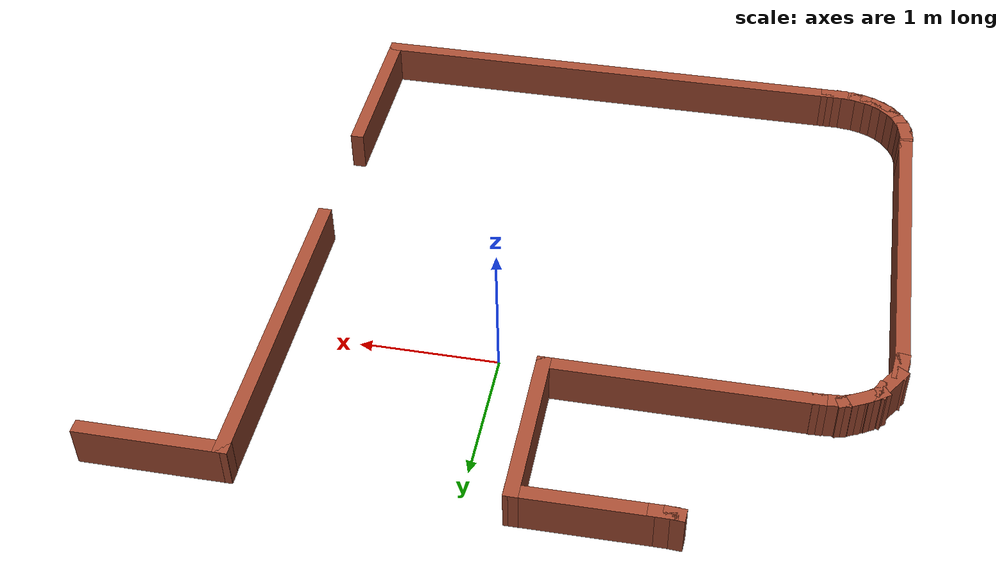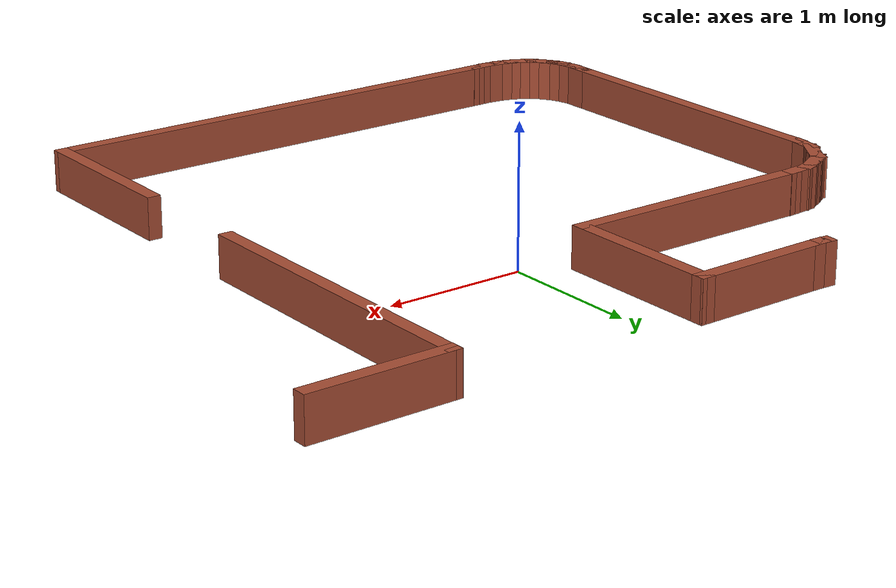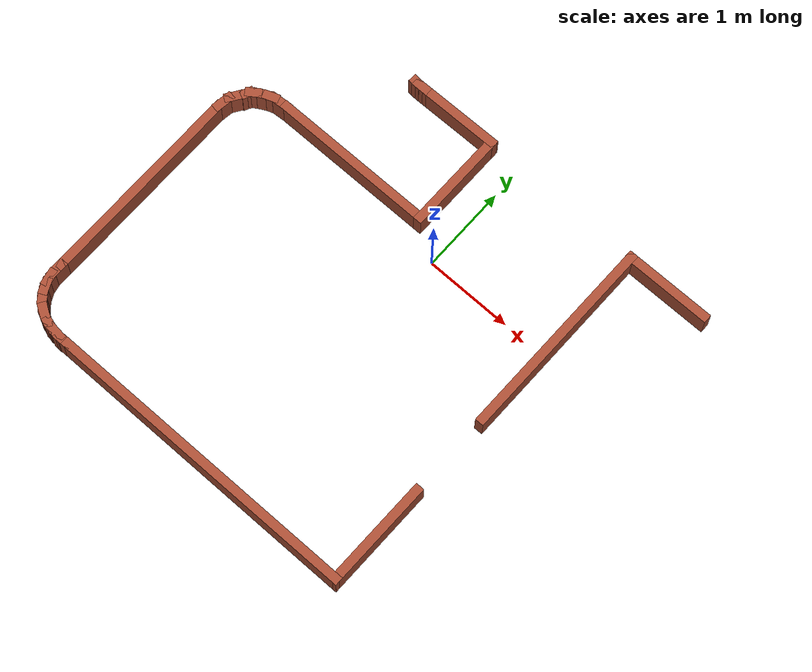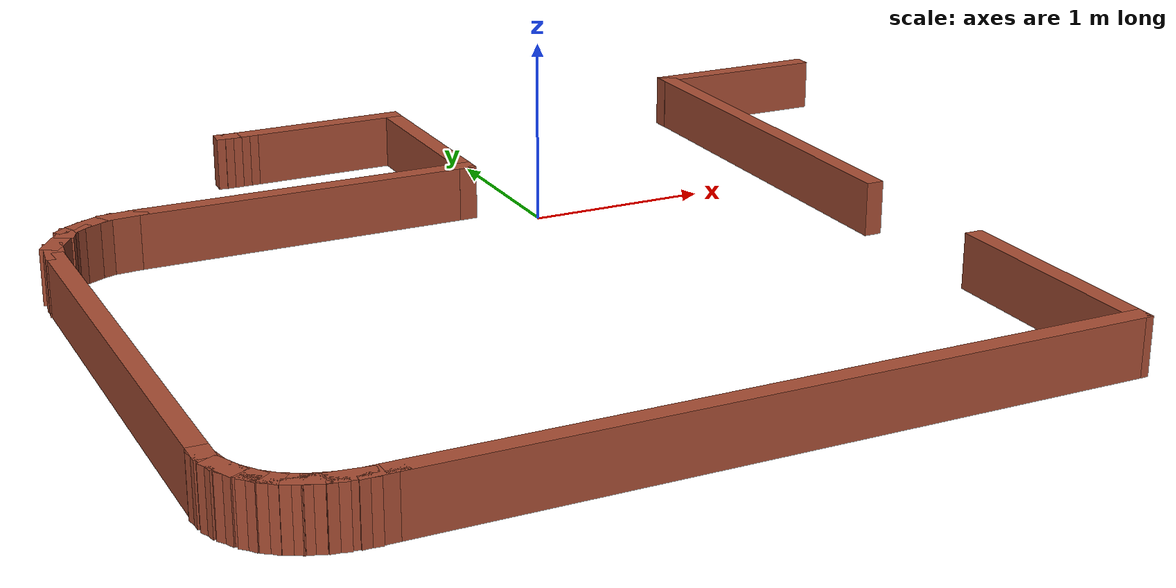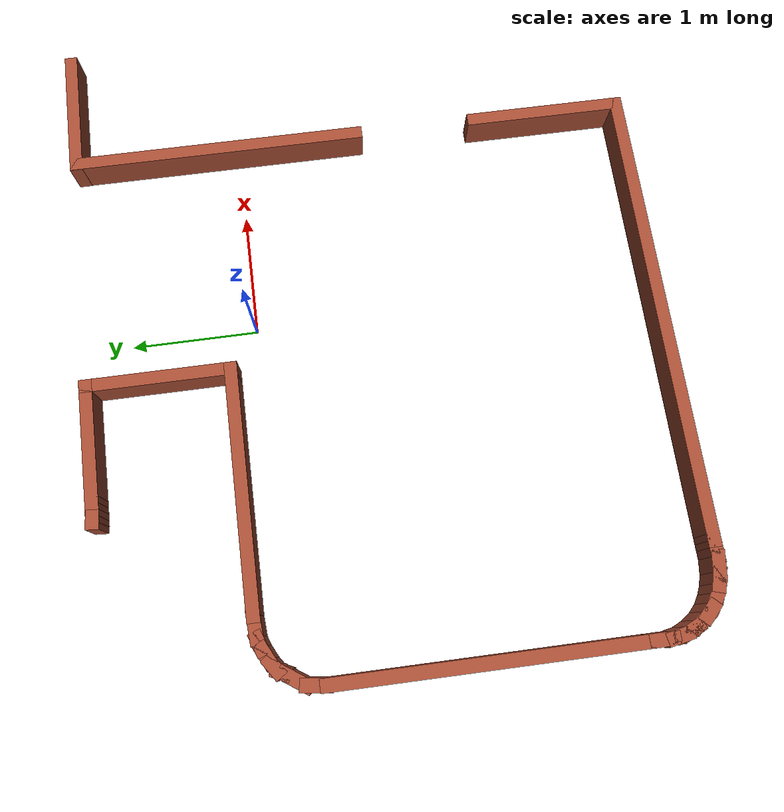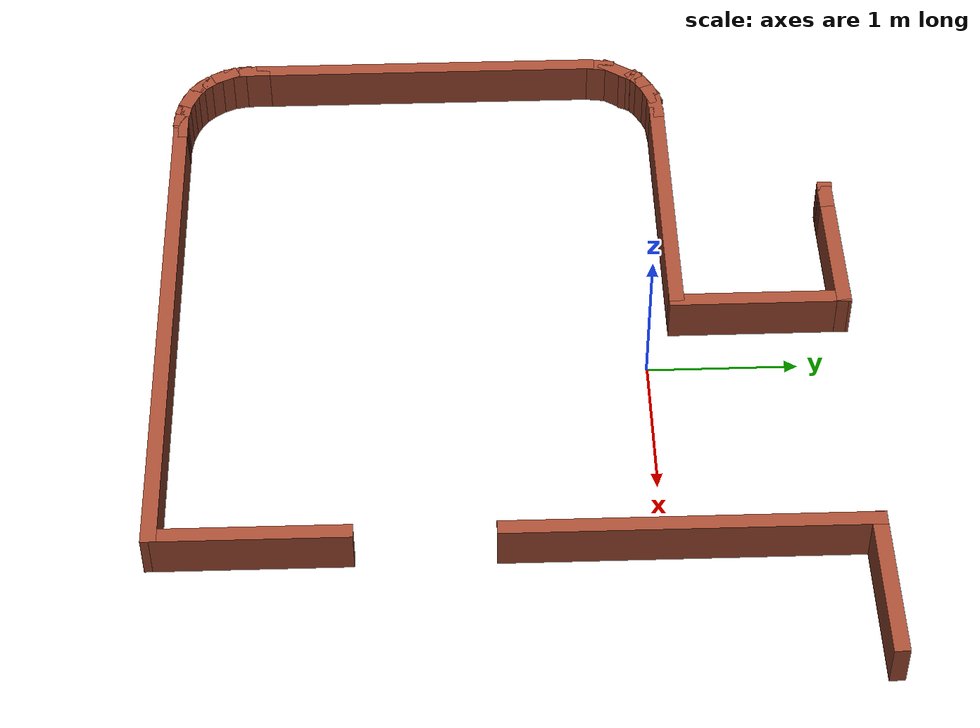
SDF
<sdf version="1.6">
 <model name="walls">
  <link name="Wall_47">
   <pose>-1.37458 1.31837 0 0 0 -0.065125</pose>
   <visual name="Wall_47_Visual">
    <pose>0 0 0.15 0 -0 0</pose>
    <geometry><box><size>0.146328 0.1 0.3</size></box></geometry>
    <material>
     <script><uri>file://media/materials/scripts/gazebo.material</uri><name>Gazebo/Bricks</name></script>
     <ambient>1 1 1 1</ambient>
    </material>
    <meta><layer>0</layer></meta>
   </visual>
   <collision name="Wall_47_Collision">
    <pose>0 0 0.15 0 -0 0</pose>
    <geometry><box><size>0.146328 0.1 0.3</size></box></geometry>
    <surface>
     <friction>
      <ode><mu>1</mu><mu2>1</mu2><fdir1>0 0 0</fdir1><slip1>0</slip1><slip2>0</slip2></ode>
      <torsional>
       <coefficient>1</coefficient>
       <patch_radius>0</patch_radius>
       <surface_radius>0</surface_radius>
       <use_patch_radius>1</use_patch_radius>
       <ode><slip>0</slip></ode>
      </torsional>
     </friction>
     <bounce><restitution_coefficient>0</restitution_coefficient><threshold>1e+06</threshold></bounce>
     <contact>
      <collide_without_contact>0</collide_without_contact>
      <collide_without_contact_bitmask>1</collide_without_contact_bitmask>
      <collide_bitmask>1</collide_bitmask>
      <ode>
       <soft_cfm>0</soft_cfm>
       <soft_erp>0.2</soft_erp>
       <kp>1e+13</kp>
       <kd>1</kd>
       <max_vel>0.01</max_vel>
       <min_depth>0</min_depth>
      </ode>
      <bullet>
       <split_impulse>1</split_impulse>
       <split_impulse_penetration_threshold>-0.01</split_impulse_penetration_threshold>
       <soft_cfm>0</soft_cfm>
       <soft_erp>0.2</soft_erp>
       <kp>1e+13</kp>
       <kd>1</kd>
      </bullet>
     </contact>
    </surface>
   </collision>
  </link>
  <link name="Wall_48">
   <pose>-1.30358 1.31687 0 0 -0 0</pose>
   <visual name="Wall_48_Visual">
    <pose>0 0 0.15 0 -0 0</pose>
    <geometry><box><size>0.19613 0.1 0.3</size></box></geometry>
    <material>
     <script><uri>file://media/materials/scripts/gazebo.material</uri><name>Gazebo/Bricks</name></script>
     <ambient>1 1 1 1</ambient>
    </material>
    <meta><layer>0</layer></meta>
   </visual>
   <collision name="Wall_48_Collision">
    <pose>0 0 0.15 0 -0 0</pose>
    <geometry><box><size>0.19613 0.1 0.3</size></box></geometry>
    <surface>
     <friction>
      <ode><mu>1</mu><mu2>1</mu2><fdir1>0 0 0</fdir1><slip1>0</slip1><slip2>0</slip2></ode>
      <torsional>
       <coefficient>1</coefficient>
       <patch_radius>0</patch_radius>
       <surface_radius>0</surface_radius>
       <use_patch_radius>1</use_patch_radius>
       <ode><slip>0</slip></ode>
      </torsional>
     </friction>
     <bounce><restitution_coefficient>0</restitution_coefficient><threshold>1e+06</threshold></bounce>
     <contact>
      <collide_without_contact>0</collide_without_contact>
      <collide_without_contact_bitmask>1</collide_without_contact_bitmask>
      <collide_bitmask>1</collide_bitmask>
      <ode>
       <soft_cfm>0</soft_cfm>
       <soft_erp>0.2</soft_erp>
       <kp>1e+13</kp>
       <kd>1</kd>
       <max_vel>0.01</max_vel>
       <min_depth>0</min_depth>
      </ode>
      <bullet>
       <split_impulse>1</split_impulse>
       <split_impulse_penetration_threshold>-0.01</split_impulse_penetration_threshold>
       <soft_cfm>0</soft_cfm>
       <soft_erp>0.2</soft_erp>
       <kp>1e+13</kp>
       <kd>1</kd>
      </bullet>
     </contact>
    </surface>
   </collision>
  </link>
  <link name="Wall_49">
   <pose>-0.805083 1.32087 0 0 -0 0.008879</pose>
   <visual name="Wall_49_Visual">
    <pose>0 0 0.15 0 -0 0</pose>
    <geometry><box><size>1.00152 0.1 0.3</size></box></geometry>
    <material>
     <script><uri>file://media/materials/scripts/gazebo.material</uri><name>Gazebo/Bricks</name></script>
     <ambient>1 1 1 1</ambient>
    </material>
    <meta><layer>0</layer></meta>
   </visual>
   <collision name="Wall_49_Collision">
    <pose>0 0 0.15 0 -0 0</pose>
    <geometry><box><size>1.00152 0.1 0.3</size></box></geometry>
    <surface>
     <friction>
      <ode><mu>1</mu><mu2>1</mu2><fdir1>0 0 0</fdir1><slip1>0</slip1><slip2>0</slip2></ode>
      <torsional>
       <coefficient>1</coefficient>
       <patch_radius>0</patch_radius>
       <surface_radius>0</surface_radius>
       <use_patch_radius>1</use_patch_radius>
       <ode><slip>0</slip></ode>
      </torsional>
     </friction>
     <bounce><restitution_coefficient>0</restitution_coefficient><threshold>1e+06</threshold></bounce>
     <contact>
      <collide_without_contact>0</collide_without_contact>
      <collide_without_contact_bitmask>1</collide_without_contact_bitmask>
      <collide_bitmask>1</collide_bitmask>
      <ode>
       <soft_cfm>0</soft_cfm>
       <soft_erp>0.2</soft_erp>
       <kp>1e+13</kp>
       <kd>1</kd>
       <max_vel>0.01</max_vel>
       <min_depth>0</min_depth>
      </ode>
      <bullet>
       <split_impulse>1</split_impulse>
       <split_impulse_penetration_threshold>-0.01</split_impulse_penetration_threshold>
       <soft_cfm>0</soft_cfm>
       <soft_erp>0.2</soft_erp>
       <kp>1e+13</kp>
       <kd>1</kd>
      </bullet>
     </contact>
    </surface>
   </collision>
  </link>
  <link name="Wall_50">
   <pose>-0.354083 0.768873 0 0 0 -1.5699</pose>
   <visual name="Wall_50_Visual">
    <pose>0 0 0.15 0 -0 0</pose>
    <geometry><box><size>1.21225 0.1 0.3</size></box></geometry>
    <material>
     <script><uri>file://media/materials/scripts/gazebo.material</uri><name>Gazebo/Bricks</name></script>
     <ambient>1 1 1 1</ambient>
    </material>
    <meta><layer>0</layer></meta>
   </visual>
   <collision name="Wall_50_Collision">
    <pose>0 0 0.15 0 -0 0</pose>
    <geometry><box><size>1.21225 0.1 0.3</size></box></geometry>
    <surface>
     <friction>
      <ode><mu>1</mu><mu2>1</mu2><fdir1>0 0 0</fdir1><slip1>0</slip1><slip2>0</slip2></ode>
      <torsional>
       <coefficient>1</coefficient>
       <patch_radius>0</patch_radius>
       <surface_radius>0</surface_radius>
       <use_patch_radius>1</use_patch_radius>
       <ode><slip>0</slip></ode>
      </torsional>
     </friction>
     <bounce><restitution_coefficient>0</restitution_coefficient><threshold>1e+06</threshold></bounce>
     <contact>
      <collide_without_contact>0</collide_without_contact>
      <collide_without_contact_bitmask>1</collide_without_contact_bitmask>
      <collide_bitmask>1</collide_bitmask>
      <ode>
       <soft_cfm>0</soft_cfm>
       <soft_erp>0.2</soft_erp>
       <kp>1e+13</kp>
       <kd>1</kd>
       <max_vel>0.01</max_vel>
       <min_depth>0</min_depth>
      </ode>
      <bullet>
       <split_impulse>1</split_impulse>
       <split_impulse_penetration_threshold>-0.01</split_impulse_penetration_threshold>
       <soft_cfm>0</soft_cfm>
       <soft_erp>0.2</soft_erp>
       <kp>1e+13</kp>
       <kd>1</kd>
      </bullet>
     </contact>
    </surface>
   </collision>
  </link>
  <link name="Wall_51">
   <pose>-1.27858 0.212873 0 0 -0 3.14159</pose>
   <visual name="Wall_51_Visual">
    <pose>0 0 0.15 0 -0 0</pose>
    <geometry><box><size>1.94962 0.1 0.3</size></box></geometry>
    <material>
     <script><uri>file://media/materials/scripts/gazebo.material</uri><name>Gazebo/Bricks</name></script>
     <ambient>1 1 1 1</ambient>
    </material>
    <meta><layer>0</layer></meta>
   </visual>
   <collision name="Wall_51_Collision">
    <pose>0 0 0.15 0 -0 0</pose>
    <geometry><box><size>1.94962 0.1 0.3</size></box></geometry>
    <surface>
     <friction>
      <ode><mu>1</mu><mu2>1</mu2><fdir1>0 0 0</fdir1><slip1>0</slip1><slip2>0</slip2></ode>
      <torsional>
       <coefficient>1</coefficient>
       <patch_radius>0</patch_radius>
       <surface_radius>0</surface_radius>
       <use_patch_radius>1</use_patch_radius>
       <ode><slip>0</slip></ode>
      </torsional>
     </friction>
     <bounce><restitution_coefficient>0</restitution_coefficient><threshold>1e+06</threshold></bounce>
     <contact>
      <collide_without_contact>0</collide_without_contact>
      <collide_without_contact_bitmask>1</collide_without_contact_bitmask>
      <collide_bitmask>1</collide_bitmask>
      <ode>
       <soft_cfm>0</soft_cfm>
       <soft_erp>0.2</soft_erp>
       <kp>1e+13</kp>
       <kd>1</kd>
       <max_vel>0.01</max_vel>
       <min_depth>0</min_depth>
      </ode>
      <bullet>
       <split_impulse>1</split_impulse>
       <split_impulse_penetration_threshold>-0.01</split_impulse_penetration_threshold>
       <soft_cfm>0</soft_cfm>
       <soft_erp>0.2</soft_erp>
       <kp>1e+13</kp>
       <kd>1</kd>
      </bullet>
     </contact>
    </surface>
   </collision>
  </link>
  <link name="Wall_52">
   <pose>-2.28158 0.207373 0 0 0 -3.0712</pose>
   <visual name="Wall_52_Visual">
    <pose>0 0 0.15 0 -0 0</pose>
    <geometry><box><size>0.256104 0.1 0.3</size></box></geometry>
    <material>
     <script><uri>file://media/materials/scripts/gazebo.material</uri><name>Gazebo/Bricks</name></script>
     <ambient>1 1 1 1</ambient>
    </material>
    <meta><layer>0</layer></meta>
   </visual>
   <collision name="Wall_52_Collision">
    <pose>0 0 0.15 0 -0 0</pose>
    <geometry><box><size>0.256104 0.1 0.3</size></box></geometry>
    <surface>
     <friction>
      <ode><mu>1</mu><mu2>1</mu2><fdir1>0 0 0</fdir1><slip1>0</slip1><slip2>0</slip2></ode>
      <torsional>
       <coefficient>1</coefficient>
       <patch_radius>0</patch_radius>
       <surface_radius>0</surface_radius>
       <use_patch_radius>1</use_patch_radius>
       <ode><slip>0</slip></ode>
      </torsional>
     </friction>
     <bounce><restitution_coefficient>0</restitution_coefficient><threshold>1e+06</threshold></bounce>
     <contact>
      <collide_without_contact>0</collide_without_contact>
      <collide_without_contact_bitmask>1</collide_without_contact_bitmask>
      <collide_bitmask>1</collide_bitmask>
      <ode>
       <soft_cfm>0</soft_cfm>
       <soft_erp>0.2</soft_erp>
       <kp>1e+13</kp>
       <kd>1</kd>
       <max_vel>0.01</max_vel>
       <min_depth>0</min_depth>
      </ode>
      <bullet>
       <split_impulse>1</split_impulse>
       <split_impulse_penetration_threshold>-0.01</split_impulse_penetration_threshold>
       <soft_cfm>0</soft_cfm>
       <soft_erp>0.2</soft_erp>
       <kp>1e+13</kp>
       <kd>1</kd>
      </bullet>
     </contact>
    </surface>
   </collision>
  </link>
  <link name="Wall_53">
   <pose>-2.39858 0.187373 0 0 0 -2.78564</pose>
   <visual name="Wall_53_Visual">
    <pose>0 0 0.15 0 -0 0</pose>
    <geometry><box><size>0.182791 0.1 0.3</size></box></geometry>
    <material>
     <script><uri>file://media/materials/scripts/gazebo.material</uri><name>Gazebo/Bricks</name></script>
     <ambient>1 1 1 1</ambient>
    </material>
    <meta><layer>0</layer></meta>
   </visual>
   <collision name="Wall_53_Collision">
    <pose>0 0 0.15 0 -0 0</pose>
    <geometry><box><size>0.182791 0.1 0.3</size></box></geometry>
    <surface>
     <friction>
      <ode><mu>1</mu><mu2>1</mu2><fdir1>0 0 0</fdir1><slip1>0</slip1><slip2>0</slip2></ode>
      <torsional>
       <coefficient>1</coefficient>
       <patch_radius>0</patch_radius>
       <surface_radius>0</surface_radius>
       <use_patch_radius>1</use_patch_radius>
       <ode><slip>0</slip></ode>
      </torsional>
     </friction>
     <bounce><restitution_coefficient>0</restitution_coefficient><threshold>1e+06</threshold></bounce>
     <contact>
      <collide_without_contact>0</collide_without_contact>
      <collide_without_contact_bitmask>1</collide_without_contact_bitmask>
      <collide_bitmask>1</collide_bitmask>
      <ode>
       <soft_cfm>0</soft_cfm>
       <soft_erp>0.2</soft_erp>
       <kp>1e+13</kp>
       <kd>1</kd>
       <max_vel>0.01</max_vel>
       <min_depth>0</min_depth>
      </ode>
      <bullet>
       <split_impulse>1</split_impulse>
       <split_impulse_penetration_threshold>-0.01</split_impulse_penetration_threshold>
       <soft_cfm>0</soft_cfm>
       <soft_erp>0.2</soft_erp>
       <kp>1e+13</kp>
       <kd>1</kd>
      </bullet>
     </contact>
    </surface>
   </collision>
  </link>
  <link name="Wall_54">
   <pose>-2.48458 0.148373 0 0 0 -2.66107</pose>
   <visual name="Wall_54_Visual">
    <pose>0 0 0.15 0 -0 0</pose>
    <geometry><box><size>0.205757 0.1 0.3</size></box></geometry>
    <material>
     <script><uri>file://media/materials/scripts/gazebo.material</uri><name>Gazebo/Bricks</name></script>
     <ambient>1 1 1 1</ambient>
    </material>
    <meta><layer>0</layer></meta>
   </visual>
   <collision name="Wall_54_Collision">
    <pose>0 0 0.15 0 -0 0</pose>
    <geometry><box><size>0.205757 0.1 0.3</size></box></geometry>
    <surface>
     <friction>
      <ode><mu>1</mu><mu2>1</mu2><fdir1>0 0 0</fdir1><slip1>0</slip1><slip2>0</slip2></ode>
      <torsional>
       <coefficient>1</coefficient>
       <patch_radius>0</patch_radius>
       <surface_radius>0</surface_radius>
       <use_patch_radius>1</use_patch_radius>
       <ode><slip>0</slip></ode>
      </torsional>
     </friction>
     <bounce><restitution_coefficient>0</restitution_coefficient><threshold>1e+06</threshold></bounce>
     <contact>
      <collide_without_contact>0</collide_without_contact>
      <collide_without_contact_bitmask>1</collide_without_contact_bitmask>
      <collide_bitmask>1</collide_bitmask>
      <ode>
       <soft_cfm>0</soft_cfm>
       <soft_erp>0.2</soft_erp>
       <kp>1e+13</kp>
       <kd>1</kd>
       <max_vel>0.01</max_vel>
       <min_depth>0</min_depth>
      </ode>
      <bullet>
       <split_impulse>1</split_impulse>
       <split_impulse_penetration_threshold>-0.01</split_impulse_penetration_threshold>
       <soft_cfm>0</soft_cfm>
       <soft_erp>0.2</soft_erp>
       <kp>1e+13</kp>
       <kd>1</kd>
      </bullet>
     </contact>
    </surface>
   </collision>
  </link>
  <link name="Wall_55">
   <pose>-2.56558 0.099873 0 0 0 -2.52693</pose>
   <visual name="Wall_55_Visual">
    <pose>0 0 0.15 0 -0 0</pose>
    <geometry><box><size>0.183298 0.1 0.3</size></box></geometry>
    <material>
     <script><uri>file://media/materials/scripts/gazebo.material</uri><name>Gazebo/Bricks</name></script>
     <ambient>1 1 1 1</ambient>
    </material>
    <meta><layer>0</layer></meta>
   </visual>
   <collision name="Wall_55_Collision">
    <pose>0 0 0.15 0 -0 0</pose>
    <geometry><box><size>0.183298 0.1 0.3</size></box></geometry>
    <surface>
     <friction>
      <ode><mu>1</mu><mu2>1</mu2><fdir1>0 0 0</fdir1><slip1>0</slip1><slip2>0</slip2></ode>
      <torsional>
       <coefficient>1</coefficient>
       <patch_radius>0</patch_radius>
       <surface_radius>0</surface_radius>
       <use_patch_radius>1</use_patch_radius>
       <ode><slip>0</slip></ode>
      </torsional>
     </friction>
     <bounce><restitution_coefficient>0</restitution_coefficient><threshold>1e+06</threshold></bounce>
     <contact>
      <collide_without_contact>0</collide_without_contact>
      <collide_without_contact_bitmask>1</collide_without_contact_bitmask>
      <collide_bitmask>1</collide_bitmask>
      <ode>
       <soft_cfm>0</soft_cfm>
       <soft_erp>0.2</soft_erp>
       <kp>1e+13</kp>
       <kd>1</kd>
       <max_vel>0.01</max_vel>
       <min_depth>0</min_depth>
      </ode>
      <bullet>
       <split_impulse>1</split_impulse>
       <split_impulse_penetration_threshold>-0.01</split_impulse_penetration_threshold>
       <soft_cfm>0</soft_cfm>
       <soft_erp>0.2</soft_erp>
       <kp>1e+13</kp>
       <kd>1</kd>
      </bullet>
     </contact>
    </surface>
   </collision>
  </link>
  <link name="Wall_56">
   <pose>-2.60933 0.053873 0 0 0 -1.98783</pose>
   <visual name="Wall_56_Visual">
    <pose>0 0 0.15 0 -0 0</pose>
    <geometry><box><size>0.149001 0.1 0.3</size></box></geometry>
    <material>
     <script><uri>file://media/materials/scripts/gazebo.material</uri><name>Gazebo/Bricks</name></script>
     <ambient>1 1 1 1</ambient>
    </material>
    <meta><layer>0</layer></meta>
   </visual>
   <collision name="Wall_56_Collision">
    <pose>0 0 0.15 0 -0 0</pose>
    <geometry><box><size>0.149001 0.1 0.3</size></box></geometry>
    <surface>
     <friction>
      <ode><mu>1</mu><mu2>1</mu2><fdir1>0 0 0</fdir1><slip1>0</slip1><slip2>0</slip2></ode>
      <torsional>
       <coefficient>1</coefficient>
       <patch_radius>0</patch_radius>
       <surface_radius>0</surface_radius>
       <use_patch_radius>1</use_patch_radius>
       <ode><slip>0</slip></ode>
      </torsional>
     </friction>
     <bounce><restitution_coefficient>0</restitution_coefficient><threshold>1e+06</threshold></bounce>
     <contact>
      <collide_without_contact>0</collide_without_contact>
      <collide_without_contact_bitmask>1</collide_without_contact_bitmask>
      <collide_bitmask>1</collide_bitmask>
      <ode>
       <soft_cfm>0</soft_cfm>
       <soft_erp>0.2</soft_erp>
       <kp>1e+13</kp>
       <kd>1</kd>
       <max_vel>0.01</max_vel>
       <min_depth>0</min_depth>
      </ode>
      <bullet>
       <split_impulse>1</split_impulse>
       <split_impulse_penetration_threshold>-0.01</split_impulse_penetration_threshold>
       <soft_cfm>0</soft_cfm>
       <soft_erp>0.2</soft_erp>
       <kp>1e+13</kp>
       <kd>1</kd>
      </bullet>
     </contact>
    </surface>
   </collision>
  </link>
  <link name="Wall_57">
   <pose>-2.67015 -0.041127 0 0 0 -2.16195</pose>
   <visual name="Wall_57_Visual">
    <pose>0 0 0.15 0 -0 0</pose>
    <geometry><box><size>0.275841 0.1 0.3</size></box></geometry>
    <material>
     <script><uri>file://media/materials/scripts/gazebo.material</uri><name>Gazebo/Bricks</name></script>
     <ambient>1 1 1 1</ambient>
    </material>
    <meta><layer>0</layer></meta>
   </visual>
   <collision name="Wall_57_Collision">
    <pose>0 0 0.15 0 -0 0</pose>
    <geometry><box><size>0.275841 0.1 0.3</size></box></geometry>
    <surface>
     <friction>
      <ode><mu>1</mu><mu2>1</mu2><fdir1>0 0 0</fdir1><slip1>0</slip1><slip2>0</slip2></ode>
      <torsional>
       <coefficient>1</coefficient>
       <patch_radius>0</patch_radius>
       <surface_radius>0</surface_radius>
       <use_patch_radius>1</use_patch_radius>
       <ode><slip>0</slip></ode>
      </torsional>
     </friction>
     <bounce><restitution_coefficient>0</restitution_coefficient><threshold>1e+06</threshold></bounce>
     <contact>
      <collide_without_contact>0</collide_without_contact>
      <collide_without_contact_bitmask>1</collide_without_contact_bitmask>
      <collide_bitmask>1</collide_bitmask>
      <ode>
       <soft_cfm>0</soft_cfm>
       <soft_erp>0.2</soft_erp>
       <kp>1e+13</kp>
       <kd>1</kd>
       <max_vel>0.01</max_vel>
       <min_depth>0</min_depth>
      </ode>
      <bullet>
       <split_impulse>1</split_impulse>
       <split_impulse_penetration_threshold>-0.01</split_impulse_penetration_threshold>
       <soft_cfm>0</soft_cfm>
       <soft_erp>0.2</soft_erp>
       <kp>1e+13</kp>
       <kd>1</kd>
      </bullet>
     </contact>
    </surface>
   </collision>
  </link>
  <link name="Wall_58">
   <pose>-2.72683 -0.185127 0 0 0 -1.70732</pose>
   <visual name="Wall_58_Visual">
    <pose>0 0 0.15 0 -0 0</pose>
    <geometry><box><size>0.243066 0.1 0.3</size></box></geometry>
    <material>
     <script><uri>file://media/materials/scripts/gazebo.material</uri><name>Gazebo/Bricks</name></script>
     <ambient>1 1 1 1</ambient>
    </material>
    <meta><layer>0</layer></meta>
   </visual>
   <collision name="Wall_58_Collision">
    <pose>0 0 0.15 0 -0 0</pose>
    <geometry><box><size>0.243066 0.1 0.3</size></box></geometry>
    <surface>
     <friction>
      <ode><mu>1</mu><mu2>1</mu2><fdir1>0 0 0</fdir1><slip1>0</slip1><slip2>0</slip2></ode>
      <torsional>
       <coefficient>1</coefficient>
       <patch_radius>0</patch_radius>
       <surface_radius>0</surface_radius>
       <use_patch_radius>1</use_patch_radius>
       <ode><slip>0</slip></ode>
      </torsional>
     </friction>
     <bounce><restitution_coefficient>0</restitution_coefficient><threshold>1e+06</threshold></bounce>
     <contact>
      <collide_without_contact>0</collide_without_contact>
      <collide_without_contact_bitmask>1</collide_without_contact_bitmask>
      <collide_bitmask>1</collide_bitmask>
      <ode>
       <soft_cfm>0</soft_cfm>
       <soft_erp>0.2</soft_erp>
       <kp>1e+13</kp>
       <kd>1</kd>
       <max_vel>0.01</max_vel>
       <min_depth>0</min_depth>
      </ode>
      <bullet>
       <split_impulse>1</split_impulse>
       <split_impulse_penetration_threshold>-0.01</split_impulse_penetration_threshold>
       <soft_cfm>0</soft_cfm>
       <soft_erp>0.2</soft_erp>
       <kp>1e+13</kp>
       <kd>1</kd>
      </bullet>
     </contact>
    </surface>
   </collision>
  </link>
  <link name="Wall_59">
   <pose>-2.73658 -1.43113 0 0 0 -1.5708</pose>
   <visual name="Wall_59_Visual">
    <pose>0 0 0.15 0 -0 0</pose>
    <geometry><box><size>2.44985 0.1 0.3</size></box></geometry>
    <material>
     <script><uri>file://media/materials/scripts/gazebo.material</uri><name>Gazebo/Bricks</name></script>
     <ambient>1 1 1 1</ambient>
    </material>
    <meta><layer>0</layer></meta>
   </visual>
   <collision name="Wall_59_Collision">
    <pose>0 0 0.15 0 -0 0</pose>
    <geometry><box><size>2.44985 0.1 0.3</size></box></geometry>
    <surface>
     <friction>
      <ode><mu>1</mu><mu2>1</mu2><fdir1>0 0 0</fdir1><slip1>0</slip1><slip2>0</slip2></ode>
      <torsional>
       <coefficient>1</coefficient>
       <patch_radius>0</patch_radius>
       <surface_radius>0</surface_radius>
       <use_patch_radius>1</use_patch_radius>
       <ode><slip>0</slip></ode>
      </torsional>
     </friction>
     <bounce><restitution_coefficient>0</restitution_coefficient><threshold>1e+06</threshold></bounce>
     <contact>
      <collide_without_contact>0</collide_without_contact>
      <collide_without_contact_bitmask>1</collide_without_contact_bitmask>
      <collide_bitmask>1</collide_bitmask>
      <ode>
       <soft_cfm>0</soft_cfm>
       <soft_erp>0.2</soft_erp>
       <kp>1e+13</kp>
       <kd>1</kd>
       <max_vel>0.01</max_vel>
       <min_depth>0</min_depth>
      </ode>
      <bullet>
       <split_impulse>1</split_impulse>
       <split_impulse_penetration_threshold>-0.01</split_impulse_penetration_threshold>
       <soft_cfm>0</soft_cfm>
       <soft_erp>0.2</soft_erp>
       <kp>1e+13</kp>
       <kd>1</kd>
      </bullet>
     </contact>
    </surface>
   </collision>
  </link>
  <link name="Wall_60">
   <pose>-2.73658 -2.66913 0 0 0 -1.5708</pose>
   <visual name="Wall_60_Visual">
    <pose>0 0 0.15 0 -0 0</pose>
    <geometry><box><size>0.226335 0.1 0.3</size></box></geometry>
    <material>
     <script><uri>file://media/materials/scripts/gazebo.material</uri><name>Gazebo/Bricks</name></script>
     <ambient>1 1 1 1</ambient>
    </material>
    <meta><layer>0</layer></meta>
   </visual>
   <collision name="Wall_60_Collision">
    <pose>0 0 0.15 0 -0 0</pose>
    <geometry><box><size>0.226335 0.1 0.3</size></box></geometry>
    <surface>
     <friction>
      <ode><mu>1</mu><mu2>1</mu2><fdir1>0 0 0</fdir1><slip1>0</slip1><slip2>0</slip2></ode>
      <torsional>
       <coefficient>1</coefficient>
       <patch_radius>0</patch_radius>
       <surface_radius>0</surface_radius>
       <use_patch_radius>1</use_patch_radius>
       <ode><slip>0</slip></ode>
      </torsional>
     </friction>
     <bounce><restitution_coefficient>0</restitution_coefficient><threshold>1e+06</threshold></bounce>
     <contact>
      <collide_without_contact>0</collide_without_contact>
      <collide_without_contact_bitmask>1</collide_without_contact_bitmask>
      <collide_bitmask>1</collide_bitmask>
      <ode>
       <soft_cfm>0</soft_cfm>
       <soft_erp>0.2</soft_erp>
       <kp>1e+13</kp>
       <kd>1</kd>
       <max_vel>0.01</max_vel>
       <min_depth>0</min_depth>
      </ode>
      <bullet>
       <split_impulse>1</split_impulse>
       <split_impulse_penetration_threshold>-0.01</split_impulse_penetration_threshold>
       <soft_cfm>0</soft_cfm>
       <soft_erp>0.2</soft_erp>
       <kp>1e+13</kp>
       <kd>1</kd>
      </bullet>
     </contact>
    </surface>
   </collision>
  </link>
  <link name="Wall_61">
   <pose>-2.72658 -2.78313 0 0 0 -1.37717</pose>
   <visual name="Wall_61_Visual">
    <pose>0 0 0.15 0 -0 0</pose>
    <geometry><box><size>0.203942 0.1 0.3</size></box></geometry>
    <material>
     <script><uri>file://media/materials/scripts/gazebo.material</uri><name>Gazebo/Bricks</name></script>
     <ambient>1 1 1 1</ambient>
    </material>
    <meta><layer>0</layer></meta>
   </visual>
   <collision name="Wall_61_Collision">
    <pose>0 0 0.15 0 -0 0</pose>
    <geometry><box><size>0.203942 0.1 0.3</size></box></geometry>
    <surface>
     <friction>
      <ode><mu>1</mu><mu2>1</mu2><fdir1>0 0 0</fdir1><slip1>0</slip1><slip2>0</slip2></ode>
      <torsional>
       <coefficient>1</coefficient>
       <patch_radius>0</patch_radius>
       <surface_radius>0</surface_radius>
       <use_patch_radius>1</use_patch_radius>
       <ode><slip>0</slip></ode>
      </torsional>
     </friction>
     <bounce><restitution_coefficient>0</restitution_coefficient><threshold>1e+06</threshold></bounce>
     <contact>
      <collide_without_contact>0</collide_without_contact>
      <collide_without_contact_bitmask>1</collide_without_contact_bitmask>
      <collide_bitmask>1</collide_bitmask>
      <ode>
       <soft_cfm>0</soft_cfm>
       <soft_erp>0.2</soft_erp>
       <kp>1e+13</kp>
       <kd>1</kd>
       <max_vel>0.01</max_vel>
       <min_depth>0</min_depth>
      </ode>
      <bullet>
       <split_impulse>1</split_impulse>
       <split_impulse_penetration_threshold>-0.01</split_impulse_penetration_threshold>
       <soft_cfm>0</soft_cfm>
       <soft_erp>0.2</soft_erp>
       <kp>1e+13</kp>
       <kd>1</kd>
      </bullet>
     </contact>
    </surface>
   </collision>
  </link>
  <link name="Wall_62">
   <pose>-2.69708 -2.87663 0 0 0 -1.14063</pose>
   <visual name="Wall_62_Visual">
    <pose>0 0 0.15 0 -0 0</pose>
    <geometry><box><size>0.193335 0.1 0.3</size></box></geometry>
    <material>
     <script><uri>file://media/materials/scripts/gazebo.material</uri><name>Gazebo/Bricks</name></script>
     <ambient>1 1 1 1</ambient>
    </material>
    <meta><layer>0</layer></meta>
   </visual>
   <collision name="Wall_62_Collision">
    <pose>0 0 0.15 0 -0 0</pose>
    <geometry><box><size>0.193335 0.1 0.3</size></box></geometry>
    <surface>
     <friction>
      <ode><mu>1</mu><mu2>1</mu2><fdir1>0 0 0</fdir1><slip1>0</slip1><slip2>0</slip2></ode>
      <torsional>
       <coefficient>1</coefficient>
       <patch_radius>0</patch_radius>
       <surface_radius>0</surface_radius>
       <use_patch_radius>1</use_patch_radius>
       <ode><slip>0</slip></ode>
      </torsional>
     </friction>
     <bounce><restitution_coefficient>0</restitution_coefficient><threshold>1e+06</threshold></bounce>
     <contact>
      <collide_without_contact>0</collide_without_contact>
      <collide_without_contact_bitmask>1</collide_without_contact_bitmask>
      <collide_bitmask>1</collide_bitmask>
      <ode>
       <soft_cfm>0</soft_cfm>
       <soft_erp>0.2</soft_erp>
       <kp>1e+13</kp>
       <kd>1</kd>
       <max_vel>0.01</max_vel>
       <min_depth>0</min_depth>
      </ode>
      <bullet>
       <split_impulse>1</split_impulse>
       <split_impulse_penetration_threshold>-0.01</split_impulse_penetration_threshold>
       <soft_cfm>0</soft_cfm>
       <soft_erp>0.2</soft_erp>
       <kp>1e+13</kp>
       <kd>1</kd>
      </bullet>
     </contact>
    </surface>
   </collision>
  </link>
  <link name="Wall_63">
   <pose>-2.64908 -2.95963 0 0 0 -0.957589</pose>
   <visual name="Wall_63_Visual">
    <pose>0 0 0.15 0 -0 0</pose>
    <geometry><box><size>0.19904 0.1 0.3</size></box></geometry>
    <material>
     <script><uri>file://media/materials/scripts/gazebo.material</uri><name>Gazebo/Bricks</name></script>
     <ambient>1 1 1 1</ambient>
    </material>
    <meta><layer>0</layer></meta>
   </visual>
   <collision name="Wall_63_Collision">
    <pose>0 0 0.15 0 -0 0</pose>
    <geometry><box><size>0.19904 0.1 0.3</size></box></geometry>
    <surface>
     <friction>
      <ode><mu>1</mu><mu2>1</mu2><fdir1>0 0 0</fdir1><slip1>0</slip1><slip2>0</slip2></ode>
      <torsional>
       <coefficient>1</coefficient>
       <patch_radius>0</patch_radius>
       <surface_radius>0</surface_radius>
       <use_patch_radius>1</use_patch_radius>
       <ode><slip>0</slip></ode>
      </torsional>
     </friction>
     <bounce><restitution_coefficient>0</restitution_coefficient><threshold>1e+06</threshold></bounce>
     <contact>
      <collide_without_contact>0</collide_without_contact>
      <collide_without_contact_bitmask>1</collide_without_contact_bitmask>
      <collide_bitmask>1</collide_bitmask>
      <ode>
       <soft_cfm>0</soft_cfm>
       <soft_erp>0.2</soft_erp>
       <kp>1e+13</kp>
       <kd>1</kd>
       <max_vel>0.01</max_vel>
       <min_depth>0</min_depth>
      </ode>
      <bullet>
       <split_impulse>1</split_impulse>
       <split_impulse_penetration_threshold>-0.01</split_impulse_penetration_threshold>
       <soft_cfm>0</soft_cfm>
       <soft_erp>0.2</soft_erp>
       <kp>1e+13</kp>
       <kd>1</kd>
      </bullet>
     </contact>
    </surface>
   </collision>
  </link>
  <link name="Wall_64">
   <pose>-2.59008 -3.02863 0 0 0 -0.751513</pose>
   <visual name="Wall_64_Visual">
    <pose>0 0 0.15 0 -0 0</pose>
    <geometry><box><size>0.182964 0.1 0.3</size></box></geometry>
    <material>
     <script><uri>file://media/materials/scripts/gazebo.material</uri><name>Gazebo/Bricks</name></script>
     <ambient>1 1 1 1</ambient>
    </material>
    <meta><layer>0</layer></meta>
   </visual>
   <collision name="Wall_64_Collision">
    <pose>0 0 0.15 0 -0 0</pose>
    <geometry><box><size>0.182964 0.1 0.3</size></box></geometry>
    <surface>
     <friction>
      <ode><mu>1</mu><mu2>1</mu2><fdir1>0 0 0</fdir1><slip1>0</slip1><slip2>0</slip2></ode>
      <torsional>
       <coefficient>1</coefficient>
       <patch_radius>0</patch_radius>
       <surface_radius>0</surface_radius>
       <use_patch_radius>1</use_patch_radius>
       <ode><slip>0</slip></ode>
      </torsional>
     </friction>
     <bounce><restitution_coefficient>0</restitution_coefficient><threshold>1e+06</threshold></bounce>
     <contact>
      <collide_without_contact>0</collide_without_contact>
      <collide_without_contact_bitmask>1</collide_without_contact_bitmask>
      <collide_bitmask>1</collide_bitmask>
      <ode>
       <soft_cfm>0</soft_cfm>
       <soft_erp>0.2</soft_erp>
       <kp>1e+13</kp>
       <kd>1</kd>
       <max_vel>0.01</max_vel>
       <min_depth>0</min_depth>
      </ode>
      <bullet>
       <split_impulse>1</split_impulse>
       <split_impulse_penetration_threshold>-0.01</split_impulse_penetration_threshold>
       <soft_cfm>0</soft_cfm>
       <soft_erp>0.2</soft_erp>
       <kp>1e+13</kp>
       <kd>1</kd>
      </bullet>
     </contact>
    </surface>
   </collision>
  </link>
  <link name="Wall_65">
   <pose>-2.52458 -3.07913 0 0 0 -0.561163</pose>
   <visual name="Wall_65_Visual">
    <pose>0 0 0.15 0 -0 0</pose>
    <geometry><box><size>0.183246 0.1 0.3</size></box></geometry>
    <material>
     <script><uri>file://media/materials/scripts/gazebo.material</uri><name>Gazebo/Bricks</name></script>
     <ambient>1 1 1 1</ambient>
    </material>
    <meta><layer>0</layer></meta>
   </visual>
   <collision name="Wall_65_Collision">
    <pose>0 0 0.15 0 -0 0</pose>
    <geometry><box><size>0.183246 0.1 0.3</size></box></geometry>
    <surface>
     <friction>
      <ode><mu>1</mu><mu2>1</mu2><fdir1>0 0 0</fdir1><slip1>0</slip1><slip2>0</slip2></ode>
      <torsional>
       <coefficient>1</coefficient>
       <patch_radius>0</patch_radius>
       <surface_radius>0</surface_radius>
       <use_patch_radius>1</use_patch_radius>
       <ode><slip>0</slip></ode>
      </torsional>
     </friction>
     <bounce><restitution_coefficient>0</restitution_coefficient><threshold>1e+06</threshold></bounce>
     <contact>
      <collide_without_contact>0</collide_without_contact>
      <collide_without_contact_bitmask>1</collide_without_contact_bitmask>
      <collide_bitmask>1</collide_bitmask>
      <ode>
       <soft_cfm>0</soft_cfm>
       <soft_erp>0.2</soft_erp>
       <kp>1e+13</kp>
       <kd>1</kd>
       <max_vel>0.01</max_vel>
       <min_depth>0</min_depth>
      </ode>
      <bullet>
       <split_impulse>1</split_impulse>
       <split_impulse_penetration_threshold>-0.01</split_impulse_penetration_threshold>
       <soft_cfm>0</soft_cfm>
       <soft_erp>0.2</soft_erp>
       <kp>1e+13</kp>
       <kd>1</kd>
      </bullet>
     </contact>
    </surface>
   </collision>
  </link>
  <link name="Wall_66">
   <pose>-2.45458 -3.11663 0 0 0 -0.416898</pose>
   <visual name="Wall_66_Visual">
    <pose>0 0 0.15 0 -0 0</pose>
    <geometry><box><size>0.176765 0.1 0.3</size></box></geometry>
    <material>
     <script><uri>file://media/materials/scripts/gazebo.material</uri><name>Gazebo/Bricks</name></script>
     <ambient>1 1 1 1</ambient>
    </material>
    <meta><layer>0</layer></meta>
   </visual>
   <collision name="Wall_66_Collision">
    <pose>0 0 0.15 0 -0 0</pose>
    <geometry><box><size>0.176765 0.1 0.3</size></box></geometry>
    <surface>
     <friction>
      <ode><mu>1</mu><mu2>1</mu2><fdir1>0 0 0</fdir1><slip1>0</slip1><slip2>0</slip2></ode>
      <torsional>
       <coefficient>1</coefficient>
       <patch_radius>0</patch_radius>
       <surface_radius>0</surface_radius>
       <use_patch_radius>1</use_patch_radius>
       <ode><slip>0</slip></ode>
      </torsional>
     </friction>
     <bounce><restitution_coefficient>0</restitution_coefficient><threshold>1e+06</threshold></bounce>
     <contact>
      <collide_without_contact>0</collide_without_contact>
      <collide_without_contact_bitmask>1</collide_without_contact_bitmask>
      <collide_bitmask>1</collide_bitmask>
      <ode>
       <soft_cfm>0</soft_cfm>
       <soft_erp>0.2</soft_erp>
       <kp>1e+13</kp>
       <kd>1</kd>
       <max_vel>0.01</max_vel>
       <min_depth>0</min_depth>
      </ode>
      <bullet>
       <split_impulse>1</split_impulse>
       <split_impulse_penetration_threshold>-0.01</split_impulse_penetration_threshold>
       <soft_cfm>0</soft_cfm>
       <soft_erp>0.2</soft_erp>
       <kp>1e+13</kp>
       <kd>1</kd>
      </bullet>
     </contact>
    </surface>
   </collision>
  </link>
  <link name="Wall_67">
   <pose>-2.37708 -3.14413 0 0 0 -0.275189</pose>
   <visual name="Wall_67_Visual">
    <pose>0 0 0.15 0 -0 0</pose>
    <geometry><box><size>0.188717 0.1 0.3</size></box></geometry>
    <material>
     <script><uri>file://media/materials/scripts/gazebo.material</uri><name>Gazebo/Bricks</name></script>
     <ambient>1 1 1 1</ambient>
    </material>
    <meta><layer>0</layer></meta>
   </visual>
   <collision name="Wall_67_Collision">
    <pose>0 0 0.15 0 -0 0</pose>
    <geometry><box><size>0.188717 0.1 0.3</size></box></geometry>
    <surface>
     <friction>
      <ode><mu>1</mu><mu2>1</mu2><fdir1>0 0 0</fdir1><slip1>0</slip1><slip2>0</slip2></ode>
      <torsional>
       <coefficient>1</coefficient>
       <patch_radius>0</patch_radius>
       <surface_radius>0</surface_radius>
       <use_patch_radius>1</use_patch_radius>
       <ode><slip>0</slip></ode>
      </torsional>
     </friction>
     <bounce><restitution_coefficient>0</restitution_coefficient><threshold>1e+06</threshold></bounce>
     <contact>
      <collide_without_contact>0</collide_without_contact>
      <collide_without_contact_bitmask>1</collide_without_contact_bitmask>
      <collide_bitmask>1</collide_bitmask>
      <ode>
       <soft_cfm>0</soft_cfm>
       <soft_erp>0.2</soft_erp>
       <kp>1e+13</kp>
       <kd>1</kd>
       <max_vel>0.01</max_vel>
       <min_depth>0</min_depth>
      </ode>
      <bullet>
       <split_impulse>1</split_impulse>
       <split_impulse_penetration_threshold>-0.01</split_impulse_penetration_threshold>
       <soft_cfm>0</soft_cfm>
       <soft_erp>0.2</soft_erp>
       <kp>1e+13</kp>
       <kd>1</kd>
      </bullet>
     </contact>
    </surface>
   </collision>
  </link>
  <link name="Wall_68">
   <pose>-2.27608 -3.16363 0 0 0 -0.12751</pose>
   <visual name="Wall_68_Visual">
    <pose>0 0 0.15 0 -0 0</pose>
    <geometry><box><size>0.217854 0.1 0.3</size></box></geometry>
    <material>
     <script><uri>file://media/materials/scripts/gazebo.material</uri><name>Gazebo/Bricks</name></script>
     <ambient>1 1 1 1</ambient>
    </material>
    <meta><layer>0</layer></meta>
   </visual>
   <collision name="Wall_68_Collision">
    <pose>0 0 0.15 0 -0 0</pose>
    <geometry><box><size>0.217854 0.1 0.3</size></box></geometry>
    <surface>
     <friction>
      <ode><mu>1</mu><mu2>1</mu2><fdir1>0 0 0</fdir1><slip1>0</slip1><slip2>0</slip2></ode>
      <torsional>
       <coefficient>1</coefficient>
       <patch_radius>0</patch_radius>
       <surface_radius>0</surface_radius>
       <use_patch_radius>1</use_patch_radius>
       <ode><slip>0</slip></ode>
      </torsional>
     </friction>
     <bounce><restitution_coefficient>0</restitution_coefficient><threshold>1e+06</threshold></bounce>
     <contact>
      <collide_without_contact>0</collide_without_contact>
      <collide_without_contact_bitmask>1</collide_without_contact_bitmask>
      <collide_bitmask>1</collide_bitmask>
      <ode>
       <soft_cfm>0</soft_cfm>
       <soft_erp>0.2</soft_erp>
       <kp>1e+13</kp>
       <kd>1</kd>
       <max_vel>0.01</max_vel>
       <min_depth>0</min_depth>
      </ode>
      <bullet>
       <split_impulse>1</split_impulse>
       <split_impulse_penetration_threshold>-0.01</split_impulse_penetration_threshold>
       <soft_cfm>0</soft_cfm>
       <soft_erp>0.2</soft_erp>
       <kp>1e+13</kp>
       <kd>1</kd>
      </bullet>
     </contact>
    </surface>
   </collision>
  </link>
  <link name="Wall_69">
   <pose>-2.15958 -3.17063 0 0 -0 0.00862</pose>
   <visual name="Wall_69_Visual">
    <pose>0 0 0.15 0 -0 0</pose>
    <geometry><box><size>0.216004 0.1 0.3</size></box></geometry>
    <material>
     <script><uri>file://media/materials/scripts/gazebo.material</uri><name>Gazebo/Bricks</name></script>
     <ambient>1 1 1 1</ambient>
    </material>
    <meta><layer>0</layer></meta>
   </visual>
   <collision name="Wall_69_Collision">
    <pose>0 0 0.15 0 -0 0</pose>
    <geometry><box><size>0.216004 0.1 0.3</size></box></geometry>
    <surface>
     <friction>
      <ode><mu>1</mu><mu2>1</mu2><fdir1>0 0 0</fdir1><slip1>0</slip1><slip2>0</slip2></ode>
      <torsional>
       <coefficient>1</coefficient>
       <patch_radius>0</patch_radius>
       <surface_radius>0</surface_radius>
       <use_patch_radius>1</use_patch_radius>
       <ode><slip>0</slip></ode>
      </torsional>
     </friction>
     <bounce><restitution_coefficient>0</restitution_coefficient><threshold>1e+06</threshold></bounce>
     <contact>
      <collide_without_contact>0</collide_without_contact>
      <collide_without_contact_bitmask>1</collide_without_contact_bitmask>
      <collide_bitmask>1</collide_bitmask>
      <ode>
       <soft_cfm>0</soft_cfm>
       <soft_erp>0.2</soft_erp>
       <kp>1e+13</kp>
       <kd>1</kd>
       <max_vel>0.01</max_vel>
       <min_depth>0</min_depth>
      </ode>
      <bullet>
       <split_impulse>1</split_impulse>
       <split_impulse_penetration_threshold>-0.01</split_impulse_penetration_threshold>
       <soft_cfm>0</soft_cfm>
       <soft_erp>0.2</soft_erp>
       <kp>1e+13</kp>
       <kd>1</kd>
      </bullet>
     </contact>
    </surface>
   </collision>
  </link>
  <link name="Wall_70">
   <pose>-0.287048 -3.17139 0 0 0 -0.000695</pose>
   <visual name="Wall_70_Visual">
    <pose>0 0 0.15 0 -0 0</pose>
    <geometry><box><size>3.72907 0.1 0.3</size></box></geometry>
    <material>
     <script><uri>file://media/materials/scripts/gazebo.material</uri><name>Gazebo/Bricks</name></script>
     <ambient>1 1 1 1</ambient>
    </material>
    <meta><layer>0</layer></meta>
   </visual>
   <collision name="Wall_70_Collision">
    <pose>0 0 0.15 0 -0 0</pose>
    <geometry><box><size>3.72907 0.1 0.3</size></box></geometry>
    <surface>
     <friction>
      <ode><mu>1</mu><mu2>1</mu2><fdir1>0 0 0</fdir1><slip1>0</slip1><slip2>0</slip2></ode>
      <torsional>
       <coefficient>1</coefficient>
       <patch_radius>0</patch_radius>
       <surface_radius>0</surface_radius>
       <use_patch_radius>1</use_patch_radius>
       <ode><slip>0</slip></ode>
      </torsional>
     </friction>
     <bounce><restitution_coefficient>0</restitution_coefficient><threshold>1e+06</threshold></bounce>
     <contact>
      <collide_without_contact>0</collide_without_contact>
      <collide_without_contact_bitmask>1</collide_without_contact_bitmask>
      <collide_bitmask>1</collide_bitmask>
      <ode>
       <soft_cfm>0</soft_cfm>
       <soft_erp>0.2</soft_erp>
       <kp>1e+13</kp>
       <kd>1</kd>
       <max_vel>0.01</max_vel>
       <min_depth>0</min_depth>
      </ode>
      <bullet>
       <split_impulse>1</split_impulse>
       <split_impulse_penetration_threshold>-0.01</split_impulse_penetration_threshold>
       <soft_cfm>0</soft_cfm>
       <soft_erp>0.2</soft_erp>
       <kp>1e+13</kp>
       <kd>1</kd>
      </bullet>
     </contact>
    </surface>
   </collision>
  </link>
  <link name="Wall_71">
   <pose>1.52852 -2.57267 0 0 -0 1.56907</pose>
   <visual name="Wall_71_Visual">
    <pose>0 0 0.15 0 -0 0</pose>
    <geometry><box><size>1.29995 0.1 0.3</size></box></geometry>
    <material>
     <script><uri>file://media/materials/scripts/gazebo.material</uri><name>Gazebo/Bricks</name></script>
     <ambient>1 1 1 1</ambient>
    </material>
    <meta><layer>0</layer></meta>
   </visual>
   <collision name="Wall_71_Collision">
    <pose>0 0 0.15 0 -0 0</pose>
    <geometry><box><size>1.29995 0.1 0.3</size></box></geometry>
    <surface>
     <friction>
      <ode><mu>1</mu><mu2>1</mu2><fdir1>0 0 0</fdir1><slip1>0</slip1><slip2>0</slip2></ode>
      <torsional>
       <coefficient>1</coefficient>
       <patch_radius>0</patch_radius>
       <surface_radius>0</surface_radius>
       <use_patch_radius>1</use_patch_radius>
       <ode><slip>0</slip></ode>
      </torsional>
     </friction>
     <bounce><restitution_coefficient>0</restitution_coefficient><threshold>1e+06</threshold></bounce>
     <contact>
      <collide_without_contact>0</collide_without_contact>
      <collide_without_contact_bitmask>1</collide_without_contact_bitmask>
      <collide_bitmask>1</collide_bitmask>
      <ode>
       <soft_cfm>0</soft_cfm>
       <soft_erp>0.2</soft_erp>
       <kp>1e+13</kp>
       <kd>1</kd>
       <max_vel>0.01</max_vel>
       <min_depth>0</min_depth>
      </ode>
      <bullet>
       <split_impulse>1</split_impulse>
       <split_impulse_penetration_threshold>-0.01</split_impulse_penetration_threshold>
       <soft_cfm>0</soft_cfm>
       <soft_erp>0.2</soft_erp>
       <kp>1e+13</kp>
       <kd>1</kd>
      </bullet>
     </contact>
    </surface>
   </collision>
  </link>
  <link name="Wall_91">
   <pose>2.01092 1.31744 0 0 0 -3.13861</pose>
   <visual name="Wall_91_Visual">
    <pose>0 0 0.15 0 -0 0</pose>
    <geometry><box><size>1.057 0.1 0.3</size></box></geometry>
    <material>
     <script><uri>file://media/materials/scripts/gazebo.material</uri><name>Gazebo/Bricks</name></script>
     <ambient>1 1 1 1</ambient>
    </material>
    <meta><layer>0</layer></meta>
   </visual>
   <collision name="Wall_91_Collision">
    <pose>0 0 0.15 0 -0 0</pose>
    <geometry><box><size>1.057 0.1 0.3</size></box></geometry>
    <surface>
     <friction>
      <ode><mu>1</mu><mu2>1</mu2><fdir1>0 0 0</fdir1><slip1>0</slip1><slip2>0</slip2></ode>
      <torsional>
       <coefficient>1</coefficient>
       <patch_radius>0</patch_radius>
       <surface_radius>0</surface_radius>
       <use_patch_radius>1</use_patch_radius>
       <ode><slip>0</slip></ode>
      </torsional>
     </friction>
     <bounce><restitution_coefficient>0</restitution_coefficient><threshold>1e+06</threshold></bounce>
     <contact>
      <collide_without_contact>0</collide_without_contact>
      <collide_without_contact_bitmask>1</collide_without_contact_bitmask>
      <collide_bitmask>1</collide_bitmask>
      <ode>
       <soft_cfm>0</soft_cfm>
       <soft_erp>0.2</soft_erp>
       <kp>1e+13</kp>
       <kd>1</kd>
       <max_vel>0.01</max_vel>
       <min_depth>0</min_depth>
      </ode>
      <bullet>
       <split_impulse>1</split_impulse>
       <split_impulse_penetration_threshold>-0.01</split_impulse_penetration_threshold>
       <soft_cfm>0</soft_cfm>
       <soft_erp>0.2</soft_erp>
       <kp>1e+13</kp>
       <kd>1</kd>
      </bullet>
     </contact>
    </surface>
   </collision>
  </link>
  <link name="Wall_92">
   <pose>1.53306 0.163867 0 0 0 -1.57204</pose>
   <visual name="Wall_92_Visual">
    <pose>0 0 0.15 0 -0 0</pose>
    <geometry><box><size>2.4043 0.1 0.3</size></box></geometry>
    <material>
     <script><uri>file://media/materials/scripts/gazebo.material</uri><name>Gazebo/Bricks</name></script>
     <ambient>1 1 1 1</ambient>
    </material>
    <meta><layer>0</layer></meta>
   </visual>
   <collision name="Wall_92_Collision">
    <pose>0 0 0.15 0 -0 0</pose>
    <geometry><box><size>2.4043 0.1 0.3</size></box></geometry>
    <surface>
     <friction>
      <ode><mu>1</mu><mu2>1</mu2><fdir1>0 0 0</fdir1><slip1>0</slip1><slip2>0</slip2></ode>
      <torsional>
       <coefficient>1</coefficient>
       <patch_radius>0</patch_radius>
       <surface_radius>0</surface_radius>
       <use_patch_radius>1</use_patch_radius>
       <ode><slip>0</slip></ode>
      </torsional>
     </friction>
     <bounce><restitution_coefficient>0</restitution_coefficient><threshold>1e+06</threshold></bounce>
     <contact>
      <collide_without_contact>0</collide_without_contact>
      <collide_without_contact_bitmask>1</collide_without_contact_bitmask>
      <collide_bitmask>1</collide_bitmask>
      <ode>
       <soft_cfm>0</soft_cfm>
       <soft_erp>0.2</soft_erp>
       <kp>1e+13</kp>
       <kd>1</kd>
       <max_vel>0.01</max_vel>
       <min_depth>0</min_depth>
      </ode>
      <bullet>
       <split_impulse>1</split_impulse>
       <split_impulse_penetration_threshold>-0.01</split_impulse_penetration_threshold>
       <soft_cfm>0</soft_cfm>
       <soft_erp>0.2</soft_erp>
       <kp>1e+13</kp>
       <kd>1</kd>
      </bullet>
     </contact>
    </surface>
   </collision>
  </link>
  <static>1</static>
 </model>
</sdf>
